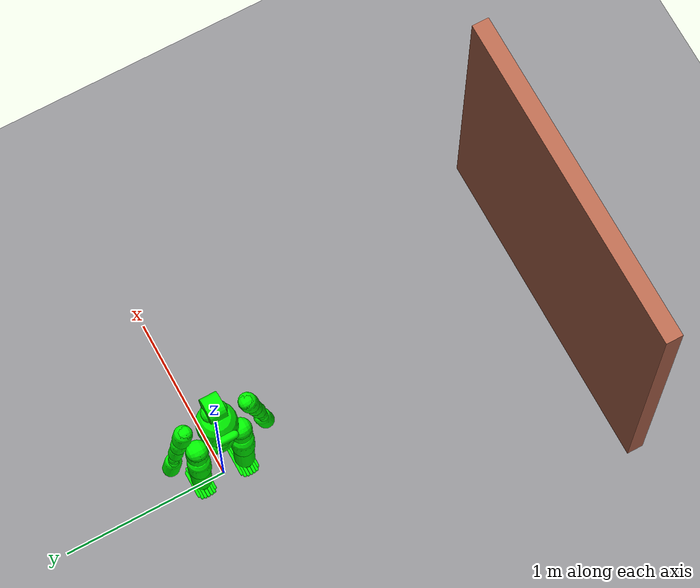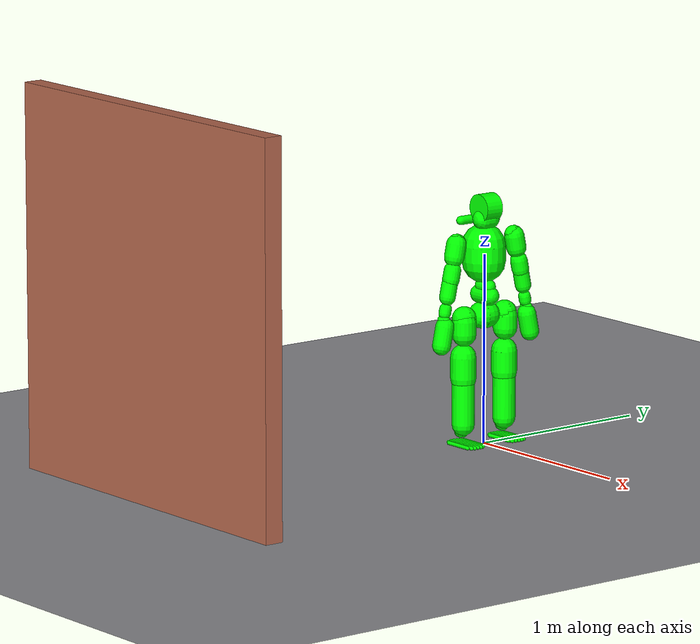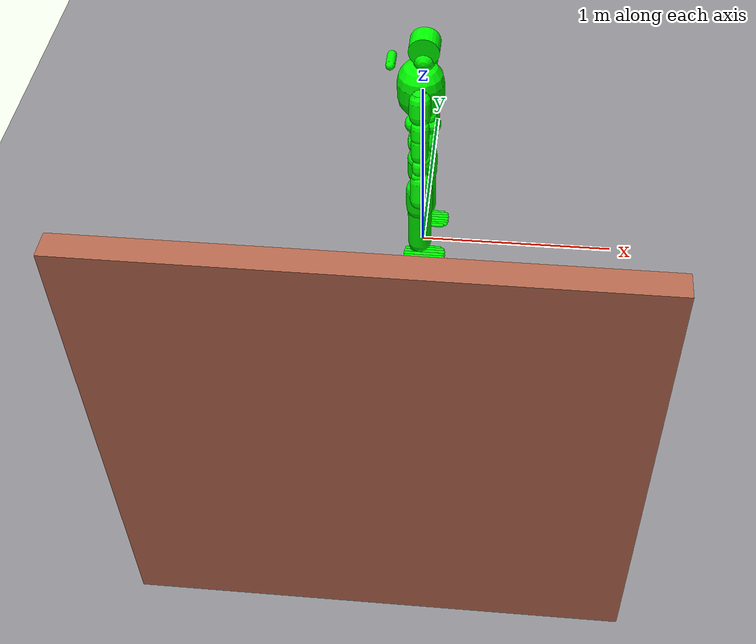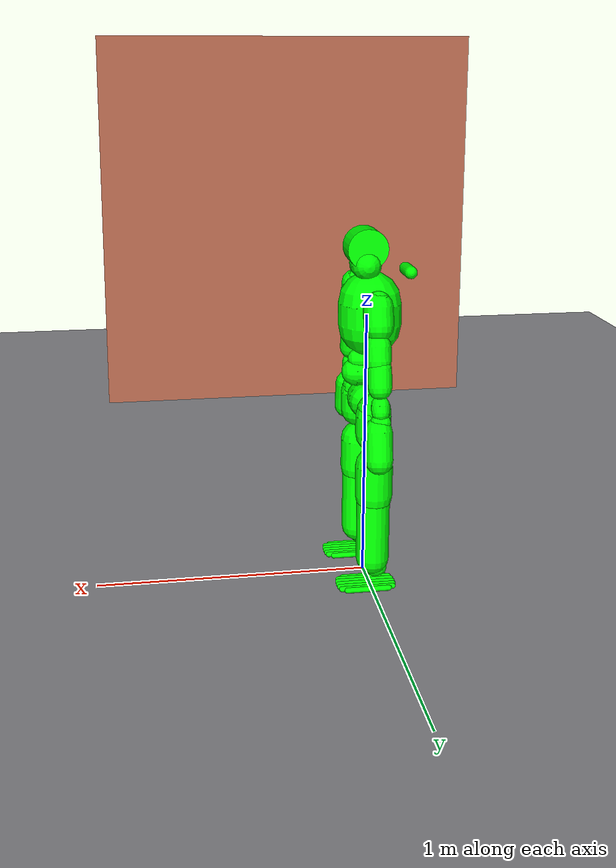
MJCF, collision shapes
<mujoco model="x2 simple collision flat scene with wall">
  <include file="x2_simple_collision.xml"/>

  <statistic center="0 0 0.75" extent="1.2"/>

  <visual>
    <headlight diffuse="0.6 0.6 0.6" ambient="0.1 0.1 0.1" specular="0.9 0.9 0.9"/>
    <map fogstart="100.0" fogend="300.0"/>
    <rgba haze="0.75 0.75 0.77 1"/>
    <global azimuth="140" elevation="-20"/>
  </visual>

  <asset>
    <texture type="skybox" builtin="gradient" rgb1="0.55 0.55 0.57" rgb2="0.55 0.55 0.57" width="512" height="3072"/>
    <texture type="2d" name="groundplane" builtin="checker" rgb1="0.62 0.62 0.63" rgb2="0.49 0.49 0.51"
      width="300" height="300"/>
    <material name="groundplane" texture="groundplane" texuniform="true" texrepeat="1.25 1.25" reflectance="0.0"/>
    <material name="wall_material" rgba="0.7 0.4 0.3 1"/>
  </asset>

  <worldbody>
    <geom name="floor" size="0 0 0.05" type="plane" material="groundplane" friction="1.0 0.005 0.0001"/>
    <body name="wall" pos="0 -2.135 1.0" euler="0.0 0.0 1.5708">
      <geom
        name="wall_collision"
        type="box"
        size="0.05 1.0 1.0"
        material="wall_material"
        contype="1"
        conaffinity="1"
        friction="1.0 0.1 0.1"
        rgba="0.7 0.4 0.3 1"
      />
    </body>
  </worldbody>

  <keyframe>
    <key name="home"
      qpos="
      0 0 0.68
      1 0 0 0
      -0.312 0.0 0.0 0.669 -0.363 0.0
      -0.312 0.0 0.0 0.669 -0.363 0.0
      0.0 0.0 0.0
      0.2 0.2 0.0 -0.3 0.0 0.0 0.0
      0.2 -0.2 0.0 -0.3 0.0 0.0 0.0
      "/>
  </keyframe>
</mujoco>

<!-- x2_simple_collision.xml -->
<mujoco model="x2_simple_collision">
  <compiler angle="radian" eulerseq="xyz" meshdir="./meshes" autolimits="true" />

  <option timestep="0.001" />

  <default>
      <default class="x2">
          <site rgba="1 0 0 1" size="0.01" group="5" />
          <joint damping="0.0" armature="0.03" frictionloss="0.3" />
          <default class="visual">
              <geom group="2" type="mesh" contype="0" conaffinity="0" density="0" />
          </default>
          <default class="collision">
              <geom group="3" type="mesh" contype="1" conaffinity="2" />
              <default class="foot">
                  <geom type="sphere" size="0.005" />
              </default>
          </default>
      </default>
  </default>
  <asset>
    <mesh name="pelvis" file="pelvis.STL" />
    <mesh name="imu_in_pelvis_link" file="imu_in_pelvis_link.STL" />
    <mesh name="left_hip_pitch_link" file="left_hip_pitch_link.STL" />
    <mesh name="left_hip_roll_link" file="left_hip_roll_link.STL" />
    <mesh name="col_left_hip_roll_link" file="left_hip_roll_link.STL" scale="1.0 0.9 1.0" />
    <mesh name="left_hip_yaw_link" file="left_hip_yaw_link.STL" />
    <mesh name="left_knee_link" file="left_knee_link.STL" />
    <mesh name="left_ankle_pitch_link" file="left_ankle_pitch_link.STL" />
    <mesh name="left_ankle_roll_link" file="left_ankle_roll_link.STL" />
    <mesh name="right_hip_pitch_link" file="right_hip_pitch_link.STL" />
    <mesh name="right_hip_roll_link" file="right_hip_roll_link.STL" />
    <mesh name="col_right_hip_roll_link" file="right_hip_roll_link.STL" scale="1.0 0.9 1.0" />
    <mesh name="right_hip_yaw_link" file="right_hip_yaw_link.STL" />
    <mesh name="right_knee_link" file="right_knee_link.STL" />
    <mesh name="right_ankle_pitch_link" file="right_ankle_pitch_link.STL" />
    <mesh name="right_ankle_roll_link" file="right_ankle_roll_link.STL" />
    <mesh name="waist_yaw_link" file="waist_yaw_link.STL" />
    <mesh name="waist_pitch_link" file="waist_pitch_link.STL" />
    <mesh name="torso_link" file="torso_plus_link.STL" />
    <mesh name="imu_in_torso_link" file="imu_in_torso_link.STL" />
    <mesh name="left_shoulder_pitch_link" file="left_shoulder_pitch_link.STL" />
    <mesh name="left_shoulder_roll_link" file="left_shoulder_roll_link.STL" />
    <mesh name="left_shoulder_yaw_link" file="left_shoulder_yaw_link.STL" />
    <mesh name="left_elbow_link" file="left_elbow_link.STL" />
    <mesh name="left_wrist_yaw_link" file="left_wrist_yaw_link.STL" />
    <mesh name="left_wrist_pitch_link" file="left_wrist_pitch_link.STL" />
    <mesh name="left_wrist_roll_link" file="left_wrist_roll_link.STL" />
    <mesh name="right_shoulder_pitch_link" file="right_shoulder_pitch_link.STL" />
    <mesh name="right_shoulder_roll_link" file="right_shoulder_roll_link.STL" />
    <mesh name="right_shoulder_yaw_link" file="right_shoulder_yaw_link.STL" />
    <mesh name="right_elbow_link" file="right_elbow_link.STL" />
    <mesh name="right_wrist_yaw_link" file="right_wrist_yaw_link.STL" />
    <mesh name="right_wrist_pitch_link" file="right_wrist_pitch_link.STL" />
    <mesh name="right_wrist_roll_link" file="right_wrist_roll_link.STL" />
    <mesh name="head_yaw_link" file="head_yaw_link.STL" />
    <mesh name="head_pitch_link" file="head_pitch_link.STL" />
    <mesh name="imu_in_head_link" file="imu_in_head_link.STL" />

  </asset>

  <worldbody>
    <body name="pelvis" pos="0 0 0.68" euler="0 0 0" childclass="x2">
      <freejoint name="floating_base_joint" />
      <geom class="visual" type="mesh" contype="0" conaffinity="0" group="1" density="0" rgba="0.298039 0.298039 0.298039 1" mesh="pelvis" />
      <geom class="collision" type="capsule" size="0.0702502" fromto="-0.0054424 -0.0156308 0.00130353 -0.0054424 0.0156308 0.00130353" rgba="0 1 0 0.3" />
      <geom class="visual" pos="0.0239465 -0.000228682 0.04171" quat="1 0 0 0" type="mesh" contype="0" conaffinity="0" group="1" density="0" mesh="imu_in_pelvis_link" />
      <site name="imu_0" pos="0.0239465 -0.000228682 0.04171" group="3" />
      <body name="left_hip_pitch_link" pos="0 0.07135 0">
        <inertial pos="0.00791 0.064136 0.000116" quat="0.70601 0.705897 0.0403038 0.0404307" mass="1.39968" diaginertia="0.00807979 0.007409 0.00155421" />
        <joint name="left_hip_pitch_joint" pos="0 0 0" axis="0 1 0" range="-2.704 2.556" actuatorfrcrange="-120 120" />
        <geom class="visual" type="mesh" contype="0" conaffinity="0" group="1" density="0" rgba="0.298039 0.298039 0.298039 1" mesh="left_hip_pitch_link" />
        <geom class="collision" type="capsule" size="0.0618209" fromto="-0.002075 0.0618209 0 -0.002075 0.0656842 0" rgba="0 1 0 0.3" group="3" />
        <body name="left_hip_roll_link" pos="-0.000575 0.0657 0">
          <inertial pos="4.7e-05 0.000231 -0.093505" quat="0.703892 0.00104942 0.00203424 0.710303" mass="1.5848" diaginertia="0.0181021 0.0176713 0.00251468" />
          <joint name="left_hip_roll_joint" pos="0 0 0" axis="1 0 0" range="-0.235 2.906" actuatorfrcrange="-120 120" />
          <geom class="visual" type="mesh" contype="0" conaffinity="0" group="1" density="0" rgba="1 1 1 1" mesh="left_hip_roll_link" />
          <geom class="collision" type="capsule" size="0.0640003" fromto="0.0005747 2.03345e-06 -0.0834933 0.0005747 2.03345e-06 -0.0149939" rgba="0 1 0 0.3" />
          <body name="left_hip_yaw_link" pos="0.000575 0 -0.13685">
            <inertial pos="-0.002375 0.003914 -0.144276" quat="0.647266 -0.0202222 0.00175224 0.761994" mass="2.01055" diaginertia="0.0526993 0.0519961 0.0023845" />
            <joint name="left_hip_yaw_joint" pos="0 0 0" axis="0 0 1" range="-1.684 3.43" actuatorfrcrange="-120 120" />
            <geom class="visual" type="mesh" contype="0" conaffinity="0" group="1" density="0" rgba="1 1 1 1" mesh="left_hip_yaw_link" />
            <geom class="collision" type="capsule" size="0.0676597" fromto="-0.00565975 0 -0.180803 -0.00565975 0 -0.068803" rgba="0 1 0 0.3" />
            <body name="left_knee_link" pos="-0.00766 0.000225 -0.1831">
              <inertial pos="-0.002655 0.003681 -0.122697" quat="0.437302 -0.00633388 0.00636434 0.89927" mass="1.56821" diaginertia="0.031041 0.0309424 0.00193262" />
              <joint name="left_knee_joint" pos="0 0 0" axis="0 1 0" range="0 2.4073" actuatorfrcrange="-120 120" />
              <geom class="visual" type="mesh" contype="0" conaffinity="0" group="1" density="0" rgba="1 1 1 1" mesh="left_knee_link" />
              <geom class="collision" type="capsule" size="0.0601612" fromto="0.0027895 -0.000225056 -0.242764 0.0027895 -0.000225056 -0.0082765" rgba="0 1 0 0.3" />
              <body name="left_ankle_pitch_link" pos="-0.01 -0.000124911 -0.282">
                <inertial pos="0.011691 -0.000181 0.003548" quat="0.72346 -0.0457688 0.0674454 0.685537" mass="0.747802" diaginertia="0.00117429 0.000984841 0.000709871" />
                <joint name="left_ankle_pitch_joint" pos="0 0 0" axis="0 1 0" range="-0.803 0.453" actuatorfrcrange="-36 36" />
                <geom class="visual" type="mesh" contype="0" conaffinity="0" group="1" density="0" rgba="0.298039 0.298039 0.298039 1" mesh="left_ankle_pitch_link" />
                <geom class="collision" type="capsule" size="0.0343" fromto="-0.0068 0 9.51812e-07 0.0045 0 9.51812e-07" rgba="0 1 0 0.3" />
                <body name="left_ankle_roll_link" pos="-0.00175 0 0">
                  <inertial pos="0.035428 2.5e-05 -0.049572" quat="0.614657 0.350346 0.350824 0.613496" mass="1.01617" diaginertia="0.007937 0.0068711 0.0025949" />
                  <joint name="left_ankle_roll_joint" pos="0 0 0" axis="1 0 0" range="-0.262 0.262" actuatorfrcrange="-24 24" />
                  <geom class="visual" type="mesh" contype="0" conaffinity="0" group="1" density="0" rgba="1 0.5 0 1" mesh="left_ankle_roll_link" />
                  <geom class="collision" type="capsule" group="3" size="0.01" fromto="-0.040 -0.05 -0.063 0.115 -0.05 -0.063" rgba="0 1 0 0.3"/>
                  <geom class="collision" type="capsule" group="3" size="0.01" fromto="-0.057 -0.0375 -0.063 0.133 -0.0375 -0.063" rgba="0 1 0 0.3"/>
                  <geom class="collision" type="capsule" group="3" size="0.01" fromto="-0.061 -0.02 -0.063 0.137 -0.02 -0.063" rgba="0 1 0 0.3"/>
                  <geom class="collision" type="capsule" group="3" size="0.01" fromto="-0.062 0 -0.063 0.138 0 -0.063" rgba="0 1 0 0.3"/>
                  <geom class="collision" type="capsule" group="3" size="0.01" fromto="-0.061 0.02 -0.063 0.137 0.02 -0.063" rgba="0 1 0 0.3"/>
                  <geom class="collision" type="capsule" group="3" size="0.01" fromto="-0.057 0.0375 -0.063 0.133 0.0375 -0.063" rgba="0 1 0 0.3"/>
                  <geom class="collision" type="capsule" group="3" size="0.01" fromto="-0.040 0.05 -0.063 0.115 0.05 -0.063" rgba="0 1 0 0.3"/>
                </body>
              </body>
            </body>
          </body>
        </body>
      </body>
      <body name="right_hip_pitch_link" pos="0 -0.07135 0">
        <inertial pos="0.007909 -0.064114 0.000131" quat="0.705894 0.706007 -0.0404833 -0.0403565" mass="1.40023" diaginertia="0.00808102 0.007409 0.00155498" />
        <joint name="right_hip_pitch_joint" pos="0 0 0" axis="0 1 0" range="-2.704 2.556" actuatorfrcrange="-120 120" />
        <geom class="visual" type="mesh" contype="0" conaffinity="0" group="1" density="0" rgba="0.298039 0.298039 0.298039 1" mesh="right_hip_pitch_link" />
        <geom class="collision" type="capsule" size="0.0618209" fromto="-0.00246997 -0.0656842 0 -0.00246997 -0.0618209 0" rgba="0 1 0 0.3" />
        <body name="right_hip_roll_link" pos="0 -0.0657 0">
          <inertial pos="-0.000586 -0.000228 -0.093568" quat="0.710476 -8.90189e-06 -0.00101098 0.703721" mass="1.58508" diaginertia="0.0181161 0.017694 0.00251594" />
          <joint name="right_hip_roll_joint" pos="0 0 0" axis="1 0 0" range="-2.906 0.235" actuatorfrcrange="-120 120" />
          <geom class="visual" type="mesh" contype="0" conaffinity="0" group="1" density="0" rgba="1 1 1 1" mesh="right_hip_roll_link" />
          <geom class="collision" type="capsule" size="0.0640003" fromto="0 -1.93957e-06 -0.0834934 0 -1.93957e-06 -0.0149938" rgba="0 1 0 0.3" />
          <body name="right_hip_yaw_link" pos="0 0 -0.13685">
            <inertial pos="-0.002444 -0.003935 -0.144335" quat="0.762367 0.00171388 -0.0204012 0.646821" mass="2.00262" diaginertia="0.0525579 0.0518558 0.0023773" />
            <joint name="right_hip_yaw_joint" pos="0 0 0" axis="0 0 1" range="-3.43 1.684" actuatorfrcrange="-120 120" />
            <geom class="visual" type="mesh" contype="0" conaffinity="0" group="1" density="0" rgba="1 1 1 1" mesh="right_hip_yaw_link" />
            <geom class="collision" type="capsule" size="0.0676597" fromto="-0.00565975 0 -0.180803 -0.00565975 0 -0.068803" rgba="0 1 0 0.3" />
            <body name="right_knee_link" pos="-0.00766 -0.000225 -0.1831">
              <inertial pos="-0.002699 -0.003794 -0.122288" quat="0.90334 0.0065752 -0.00663139 0.428824" mass="1.56588" diaginertia="0.0308703 0.0307718 0.00192491" />
              <joint name="right_knee_joint" pos="0 0 0" axis="0 1 0" range="0 2.4073" actuatorfrcrange="-120 120" />
              <geom class="visual" type="mesh" contype="0" conaffinity="0" group="1" density="0" rgba="1 1 1 1" mesh="right_knee_link" />
              <geom class="collision" type="capsule" size="0.0601612" fromto="0.0027895 0.000225246 -0.242764 0.0027895 0.000225246 -0.0082765" rgba="0 1 0 0.3" />
              <body name="right_ankle_pitch_link" pos="-0.01 0.000124911 -0.282">
                <inertial pos="0.011665 0.000937 0.00394" quat="0.7183 0.0624712 -0.034146 0.692081" mass="0.749566" diaginertia="0.00122381 0.00103716 0.000713034" />
                <joint name="right_ankle_pitch_joint" pos="0 0 0" axis="0 1 0" range="-0.803 0.453" actuatorfrcrange="-36 36" />
                <geom class="visual" type="mesh" contype="0" conaffinity="0" group="1" density="0" rgba="0.298039 0.298039 0.298039 1" mesh="right_ankle_pitch_link" />
                <geom class="collision" type="capsule" size="0.0343" fromto="-0.0068 0 9.51812e-07 0.0045 0 9.51812e-07" rgba="0 1 0 0.3" />
                <body name="right_ankle_roll_link" pos="-0.00175 0 0">
                  <inertial pos="0.035428 2.5e-05 -0.049572" quat="0.614657 0.350346 0.350824 0.613496" mass="1.01617" diaginertia="0.007937 0.0068711 0.0025949" />
                  <joint name="right_ankle_roll_joint" pos="0 0 0" axis="1 0 0" range="-0.2625 0.2625" actuatorfrcrange="-24 24" />
                  <geom class="visual" type="mesh" contype="0" conaffinity="0" group="1" density="0" rgba="1 0.5 0 1" mesh="right_ankle_roll_link" />
                  <geom class="collision" type="capsule" group="3" size="0.01" fromto="-0.040 -0.05 -0.063 0.115 -0.05 -0.063" rgba="0 1 0 0.3"/>
                  <geom class="collision" type="capsule" group="3" size="0.01" fromto="-0.057 -0.0375 -0.063 0.133 -0.0375 -0.063" rgba="0 1 0 0.3"/>
                  <geom class="collision" type="capsule" group="3" size="0.01" fromto="-0.061 -0.02 -0.063 0.137 -0.02 -0.063" rgba="0 1 0 0.3"/>
                  <geom class="collision" type="capsule" group="3" size="0.01" fromto="-0.062 0 -0.063 0.138 0 -0.063" rgba="0 1 0 0.3"/>
                  <geom class="collision" type="capsule" group="3" size="0.01" fromto="-0.061 0.02 -0.063 0.137 0.02 -0.063" rgba="0 1 0 0.3"/>
                  <geom class="collision" type="capsule" group="3" size="0.01" fromto="-0.057 0.0375 -0.063 0.133 0.0375 -0.063" rgba="0 1 0 0.3"/>
                  <geom class="collision" type="capsule" group="3" size="0.01" fromto="-0.040 0.05 -0.063 0.115 0.05 -0.063" rgba="0 1 0 0.3"/>
              </body>
            </body>
          </body>
        </body>
      </body>
      </body>
      <body name="waist_yaw_link" pos="0 0 0.06706">
        <inertial pos="-0.001359 4.7e-05 0.041703" quat="0.99876 0.000921559 0.0477625 0.0140034" mass="1.66854" diaginertia="0.00503206 0.00499998 0.00283196" />
        <joint name="waist_yaw_joint" pos="0 0 0" axis="0 0 1" range="-3.43 2.382" actuatorfrcrange="-120 120" />
        <geom class="visual" type="mesh" contype="0" conaffinity="0" group="1" density="0" rgba="0.298039 0.298039 0.298039 1" mesh="waist_yaw_link" />
        <geom class="collision" type="capsule" size="0.050" fromto="-0.040 0 0.040 0.040 0 0.040" rgba="0 1 0 0.3" />

        <body name="waist_pitch_link" pos="0 0 0.0880106">
          <inertial pos="0.008967 -1e-06 0" quat="0.5 0.5 -0.5 0.5" mass="0.392413" diaginertia="0.00023 0.000133 0.000133" />
          <joint name="waist_pitch_joint" pos="0 0 0" axis="0 1 0" range="-0.314 0.314" actuatorfrcrange="-48 48" />
          <geom class="visual" type="mesh" contype="0" conaffinity="0" group="1" density="0" rgba="0.298039 0.298039 0.298039 1" mesh="waist_pitch_link" />
          <geom class="collision" type="capsule" size="0.038" fromto="-0.020 0 0 0.030 0 0" rgba="0 1 0 0.3" />

          <body name="torso_link">
          <inertial pos="-0.000188 0.000605 0.191827" quat="0.999959 0.00110321 0.0081892 0.00362262" mass="10.1441" diaginertia="0.479863 0.455999 0.0666413" />
            <joint name="waist_roll_joint" pos="0 0 0" axis="1 0 0" range="-0.488 0.488" actuatorfrcrange="-48 48" />
            <geom class="visual" type="mesh" contype="0" conaffinity="0" group="1" density="0" rgba="1 1 1 1" mesh="torso_link" />
            <geom class="collision" type="capsule" size="0.115" fromto="-0.010 0 0.132 -0.010 0 0.212" rgba="0 1 0 0.3" />
            <geom class="collision" type="capsule" size="0.023" fromto="-0.15 -0.04 0.325 -0.15 0.04 0.325" rgba="0 1 0 0.3" />
            <site name="imu_1" pos="-0.0248787 0.00198528 0.105938" group="3" />
            <geom class="visual" pos="-0.0248787 0.00198528 0.105938" quat="1 0 0 0" type="mesh" contype="0" conaffinity="0" group="1" density="0" rgba="0.647059 0.619608 0.588235 1" mesh="imu_in_torso_link" />
            <body name="left_shoulder_pitch_link" pos="0.00329907 0.143032 0.241648" quat="0.994522 0.104528 0 0">
              <inertial pos="0.003007 0.050014 6.2e-05" quat="0.707145 0.706403 0.027325 0.0139105" mass="0.885896" diaginertia="0.00303104 0.00292896 0.000676999" />
              <joint name="left_shoulder_pitch_joint" pos="0 0 0" axis="0 1 0" range="-3.08 2.04" actuatorfrcrange="-36 36" />
              <geom class="visual" type="mesh" contype="0" conaffinity="0" group="1" density="0" rgba="0.298039 0.298039 0.298039 1" mesh="left_shoulder_pitch_link" />
              <geom class="collision" type="capsule" size="0.0451779" fromto="-0.00162681 0.045178 1.19526e-05 -0.00162681 0.0494221 1.19526e-05" rgba="0 1 0 0.3" />
              <body name="left_shoulder_roll_link" pos="-0.000499991 0.0495 0">
                <inertial pos="0.000621 -0.000183 -0.078842" quat="0.706401 0.00587444 0.00386922 0.707777" mass="0.706556" diaginertia="0.00549904 0.00540092 0.000539037" />
                <joint name="left_shoulder_roll_joint" pos="0 0 0" axis="1 0 0" range="-0.061 2.993" actuatorfrcrange="-36 36" />
                <geom class="visual" type="mesh" contype="0" conaffinity="0" group="1" density="0" rgba="1 1 1 1" mesh="left_shoulder_roll_link" />
                <geom class="collision" type="capsule" size="0.0524444" fromto="0.0004453 -6.74278e-07 -0.0771634 0.0004453 -6.74278e-07 -0.0097262" rgba="0 1 0 0.3" />
                <body name="left_shoulder_yaw_link" pos="0.00122424 0 -0.121195" quat="0.999996 0 -0.00298782 0">
                  <inertial pos="0.010005 0.000179 -0.069477" quat="0.996444 0.00144278 0.0782236 0.0312643" mass="0.704662" diaginertia="0.00438693 0.00436694 0.00044713" />
                  <joint name="left_shoulder_yaw_joint" pos="0 0 0" axis="0 0 1" range="-2.556 2.556" actuatorfrcrange="-24 24" />
                  <geom class="visual" type="mesh" contype="0" conaffinity="0" group="1" density="0" rgba="1 1 1 1" mesh="left_shoulder_yaw_link" />
                  <geom class="collision" type="capsule" size="0.0451555" fromto="0.00310745 -1.09896e-06 -0.0752051 0.00310745 -1.09896e-06 -0.0251553" rgba="0 1 0 0.3" />
                  <body name="left_elbow_link" pos="0.014 0.000199986 -0.08295" quat="0.999996 0 0.00298782 0">
                    <inertial pos="-0.013174 0.003788 -0.080203" quat="0.970867 0.0083727 -0.0764035 -0.226955" mass="0.688008" diaginertia="0.0054008 0.00531735 0.000446844" />
                    <joint name="left_elbow_joint" pos="0 0 0" axis="0 1 0" range="-2.3556 0" actuatorfrcrange="-24 24" />
                    <geom class="visual" type="mesh" contype="0" conaffinity="0" group="1" density="0" rgba="1 1 1 1" mesh="left_elbow_link" />
                    <geom class="collision" type="capsule" size="0.0423332" fromto="-0.0130287 0.00213197 -0.0832989 -0.0130287 0.00213197 -0.0148127" rgba="0 1 0 0.3" />
                    <body name="left_wrist_yaw_link" pos="-0.0132797 -9.75488e-05 -0.120576">
                      <inertial pos="7.6e-05 0.007263 -0.030679" quat="0.992384 -0.122507 -0.00213896 -0.0126728" mass="0.360708" diaginertia="0.000612057 0.000527003 0.00018794" />
                      <joint name="left_wrist_yaw_joint" pos="0 0 0" axis="0 0 1" range="-2.556 2.556" actuatorfrcrange="-24 24" />
                      <geom class="visual" type="mesh" contype="0" conaffinity="0" group="1" density="0" rgba="1 1 1 1" mesh="left_wrist_yaw_link" />
                      <geom class="collision" type="capsule" size="0.032" fromto="0 0 -0.047 0 0 -0.023" rgba="0 1 0 0.3" />

                      <body name="left_wrist_pitch_link" pos="0.000490001 0 -0.0819985" quat="0.999996 0 -0.00298783 0">
                        <inertial pos="0.011479 0.002282 0.001703" quat="0.258763 0.693211 0.202262 0.641553" mass="0.292062" diaginertia="0.000178433 0.000138482 9.10855e-05" />
                        <joint name="left_wrist_pitch_joint" pos="0 0 0" axis="0 1 0" range="-0.558 0.558" actuatorfrcrange="-4.8 4.8" />
                        <geom class="visual" type="mesh" contype="0" conaffinity="0" group="1" density="0" rgba="0.3 0.3 0.3 1" mesh="left_wrist_pitch_link" />
                        <geom class="collision" type="capsule" size="0.029" fromto="-0.0065 -0.0015 -0.00124581 0.006 -0.0015 -0.00124581" rgba="0 1 0 0.3" />
                        <body name="left_wrist_roll_link">
                          <inertial pos="0.002935 -0.001499 -0.083026" quat="0.606338 0.022665 0.0055862 0.794865" mass="0.30304" diaginertia="0.00278114 0.00266331 0.000205545" />
                          <joint name="left_wrist_roll_joint" pos="0 0 0" axis="1 0 0" range="-1.571 0.724" actuatorfrcrange="-4.8 4.8" />
                          <geom class="visual" type="mesh" contype="0" conaffinity="0" group="1" density="0" rgba="0.898039 0.917647 0.929412 1" mesh="left_wrist_roll_link" />
                          <geom class="collision" type="capsule" size="0.0485872" fromto="0.0065872 -0.00936239 -0.133114 0.0065872 -0.00936239 -0.0320872" rgba="0 1 0 0.3" />
                        </body>
                      </body>
                    </body>
                  </body>
                </body>
              </body>
            </body>
            <body name="right_shoulder_pitch_link" pos="0.00330094 -0.143031 0.241648" quat="0.994522 -0.10453 0 0">
              <inertial pos="0.002721 -0.050304 3.4e-05" quat="0.706743 0.706967 -0.0144448 -0.0224265" mass="0.885544" diaginertia="0.00303743 0.00294899 0.00067458" />
              <joint name="right_shoulder_pitch_joint" pos="0 0 0" axis="0 1 0" range="-3.08 2.04" actuatorfrcrange="-36 36" />
              <geom class="visual" type="mesh" contype="0" conaffinity="0" group="1" density="0" rgba="0.298039 0.298039 0.298039 1" mesh="right_shoulder_pitch_link" />
              <geom class="collision" type="capsule" size="0.0450011" fromto="-0.00173747 -0.0495987 -1.27591e-06 -0.00173747 -0.0450011 -1.27591e-06" rgba="0 1 0 0.3" />
              <body name="right_shoulder_roll_link" pos="-0.0005 -0.0495 0" quat="1 0 7.70015e-05 0">
                <inertial pos="0.000598 0.000185 -0.079928" quat="0.707532 0.00175816 0.00375761 0.706669" mass="0.696963" diaginertia="0.00548904 0.0054003 0.000529664" />
                <joint name="right_shoulder_roll_joint" pos="0 0 0" axis="1 0 0" range="-2.993 0.061" actuatorfrcrange="-36 36" />
                <geom class="visual" type="mesh" contype="0" conaffinity="0" group="1" density="0" rgba="1 1 1 1" mesh="right_shoulder_roll_link" />
                <geom class="collision" type="capsule" size="0.0524444" fromto="0.0004433 0 -0.0771056 0.0004433 0 -0.0097244" rgba="0 1 0 0.3" />
                <body name="right_shoulder_yaw_link" pos="0.0005 0 -0.1212">
                  <inertial pos="0.010082 -0.000178 -0.069484" quat="0.996531 -0.00117604 0.0784297 -0.0277917" mass="0.704661" diaginertia="0.00438849 0.00436595 0.000445562" />
                  <joint name="right_shoulder_yaw_joint" pos="0 0 0" axis="0 0 1" range="-2.556 2.556" actuatorfrcrange="-24 24" />
                  <geom class="visual" type="mesh" contype="0" conaffinity="0" group="1" density="0" rgba="1 1 1 1" mesh="right_shoulder_yaw_link" />
                  <geom class="collision" type="capsule" size="0.044822" fromto="0.00344085 1.28523e-06 -0.0734741 0.00344085 1.28523e-06 -0.0245757" rgba="0 1 0 0.3" />
                  <body name="right_elbow_link" pos="0.014 -0.0002 -0.08295">
                    <inertial pos="-0.013517 -0.003463 -0.080438" quat="0.973224 -0.00938144 -0.0782816 0.215913" mass="0.687932" diaginertia="0.00542019 0.00534355 0.000444255" />
                    <joint name="right_elbow_joint" pos="0 0 0" axis="0 1 0" range="-2.3556 0" actuatorfrcrange="-24 24" />
                    <geom class="visual" type="mesh" contype="0" conaffinity="0" group="1" density="0" rgba="1 1 1 1" mesh="right_elbow_link" />
                    <geom class="collision" type="capsule" size="0.0423334" fromto="-0.0117707 -0.00213153 -0.0831608 -0.0117707 -0.00213153 -0.0147232" rgba="0 1 0 0.3" />
                    <body name="right_wrist_yaw_link" pos="-0.014 9.75261e-05 -0.120694" quat="1 0 0 1.63671e-05">
                      <inertial pos="0.000153 -0.006979 -0.032069" quat="0.994972 0.0996496 -0.000602255 0.0100452" mass="0.372787" diaginertia="0.00069604 0.000598539 0.000202421" />
                      <joint name="right_wrist_yaw_joint" pos="0 0 0" axis="0 0 1" range="-2.556 2.556" actuatorfrcrange="-24 24" />
                      <geom class="visual" type="mesh" contype="0" conaffinity="0" group="1" density="0" rgba="1 1 1 1" mesh="right_wrist_yaw_link" />
                      <geom class="collision" type="capsule" size="0.032" fromto="0 0 -0.047 0 0 -0.023" rgba="0 1 0 0.3" />

                      <body name="right_wrist_pitch_link" pos="0 0 -0.0818" quat="1 0 0 -1.63671e-05">
                        <inertial pos="0.012092 -0.002544 0.001781" quat="-0.292763 0.682227 -0.235996 0.627027" mass="0.279175" diaginertia="0.000171965 0.00013308 8.19541e-05" />
                        <joint name="right_wrist_pitch_joint" pos="0 0 0" axis="0 1 0" range="-0.558 0.558" actuatorfrcrange="-4.8 4.8" />
                        <geom class="visual" type="mesh" contype="0" conaffinity="0" group="1" density="0" rgba="0.3 0.3 0.3 1" mesh="right_wrist_pitch_link" />
                        <geom class="collision" type="capsule" size="0.029" fromto="-0.00650001 0.0015 -0.00124581 0.006 0.0015 -0.00124581" rgba="0 1 0 0.3" />
                        <body name="right_wrist_roll_link">
                          <inertial pos="0.003056 0.00138 -0.082799" quat="0.794575 0.00682121 0.0232843 0.606681" mass="0.303847" diaginertia="0.002781 0.00266288 0.000206121" />
                          <joint name="right_wrist_roll_joint" pos="0 0 0" axis="1 0 0" range="-0.724 1.571" actuatorfrcrange="-4.8 4.8" />
                          <geom class="visual" type="mesh" contype="0" conaffinity="0" group="1" density="0" rgba="0.898039 0.917647 0.929412 1" mesh="right_wrist_roll_link" />
                          <geom class="collision" type="capsule" size="0.0487165" fromto="0.00671655 0.00921908 -0.133006 0.00671655 0.00921908 -0.0322166" rgba="0 1 0 0.3" />
                        </body>
                      </body>
                    </body>
                  </body>
                </body>
              </body>
            </body>
            <body name="head_yaw_link" pos="0.00834773 0 0.309397">
              <inertial pos="-0.003139 0.001399 0.051838" quat="0.999924 -0.00911422 0.00384341 0.00741605" mass="0.720047" diaginertia="0.0038613 0.00323157 0.00110213" />

              <geom class="visual" type="mesh" contype="0" conaffinity="0" group="1" density="0" rgba="0.866667 0.866667 0.890196 1" mesh="head_yaw_link" />
              <geom class="collision" type="capsule" size="0.055" fromto="0 -0.020 0.045 0 0.020 0.045" rgba="0 1 0 0.3" />

              <body name="head_pitch_link" pos="0 0 0.0889">
                <inertial pos="0.003033 -6e-05 0.004395" quat="0.695573 -0.162421 -0.145198 0.684628" mass="0.999287" diaginertia="0.0035988 0.00298179 0.00259841" />

                <geom class="collision" size="0.074 0.05" pos="0 0 0.015" quat="0.499898 0.5 0.5 -0.500102" type="cylinder" rgba="0 1 0 0.3" />
                <geom class="visual" type="mesh" contype="0" conaffinity="0" group="1" density="0" rgba="0.2 0.2 0.2 1" mesh="head_pitch_link" />

                <site name="imu_2" pos="0.0259999 -8.25389e-05 0.0176" group="3" />
                <geom class="visual" pos="0.0259999 -8.25389e-05 0.0176" quat="1 0 0 0" type="mesh" contype="0" conaffinity="0" group="1" density="0" rgba="0.647059 0.619608 0.588235 1" mesh="imu_in_head_link" />

              </body>
            </body>
          </body>
        </body>
      </body>
    </body>
  </worldbody>
  <actuator>
    <position class="x2" kp="120" kv="5" forcerange="-120 120" name="left_hip_pitch_joint" joint="left_hip_pitch_joint" />
    <position class="x2" kp="100" kv="4" forcerange="-120 120" name="left_hip_roll_joint" joint="left_hip_roll_joint" />
    <position class="x2" kp="100" kv="4" forcerange="-120 120" name="left_hip_yaw_joint" joint="left_hip_yaw_joint" />
    <position class="x2" kp="150" kv="5" forcerange="-120 120" name="left_knee_joint" joint="left_knee_joint" />
    <position class="x2" kp="40" kv="2" forcerange="-36 36" name="left_ankle_pitch_joint" joint="left_ankle_pitch_joint" />
    <position class="x2" kp="40" kv="2" forcerange="-24 24" name="left_ankle_roll_joint" joint="left_ankle_roll_joint" />

    <position class="x2" kp="120" kv="5" forcerange="-120 120" name="right_hip_pitch_joint" joint="right_hip_pitch_joint" />
    <position class="x2" kp="100" kv="4" forcerange="-120 120" name="right_hip_roll_joint" joint="right_hip_roll_joint" />
    <position class="x2" kp="100" kv="4" forcerange="-120 120" name="right_hip_yaw_joint" joint="right_hip_yaw_joint" />
    <position class="x2" kp="150" kv="5" forcerange="-120 120" name="right_knee_joint" joint="right_knee_joint" />
    <position class="x2" kp="40" kv="2" forcerange="-36 36" name="right_ankle_pitch_joint" joint="right_ankle_pitch_joint" />
    <position class="x2" kp="40" kv="2" forcerange="-24 24" name="right_ankle_roll_joint" joint="right_ankle_roll_joint" />

    <position class="x2" kp="40.1792" kv="2.5579" forcerange="-120 120" name="waist_yaw_joint" joint="waist_yaw_joint" />
    <position class="x2" kp="200" kv="2" forcerange="-48 48" name="waist_pitch_joint" joint="waist_pitch_joint" />
    <position class="x2" kp="200" kv="2" forcerange="-48 48" name="waist_roll_joint" joint="waist_roll_joint" />

    <position class="x2" kp="50" kv="3" forcerange="-36 36" name="left_shoulder_pitch_joint" joint="left_shoulder_pitch_joint" />
    <position class="x2" kp="50" kv="3" forcerange="-36 36" name="left_shoulder_roll_joint" joint="left_shoulder_roll_joint" />
    <position class="x2" kp="50" kv="3" forcerange="-24 24" name="left_shoulder_yaw_joint" joint="left_shoulder_yaw_joint" />
    <position class="x2" kp="50" kv="3" forcerange="-24 24" name="left_elbow_joint" joint="left_elbow_joint" />
    <position class="x2" kp="20" kv="2" forcerange="-24 24" name="left_wrist_yaw_joint" joint="left_wrist_yaw_joint" />
    <position class="x2" kp="20" kv="2" forcerange="-4.8 4.8" name="left_wrist_pitch_joint" joint="left_wrist_pitch_joint" />
    <position class="x2" kp="20" kv="2" forcerange="-4.8 4.8" name="left_wrist_roll_joint" joint="left_wrist_roll_joint" />

    <position class="x2" kp="50" kv="3" forcerange="-36 36" name="right_shoulder_pitch_joint" joint="right_shoulder_pitch_joint" />
    <position class="x2" kp="50" kv="3" forcerange="-36 36" name="right_shoulder_roll_joint" joint="right_shoulder_roll_joint" />
    <position class="x2" kp="50" kv="3" forcerange="-24 24" name="right_shoulder_yaw_joint" joint="right_shoulder_yaw_joint" />
    <position class="x2" kp="50" kv="3" forcerange="-24 24" name="right_elbow_joint" joint="right_elbow_joint" />
    <position class="x2" kp="20" kv="2" forcerange="-24 24" name="right_wrist_yaw_joint" joint="right_wrist_yaw_joint" />
    <position class="x2" kp="20" kv="2" forcerange="-4.8 4.8" name="right_wrist_pitch_joint" joint="right_wrist_pitch_joint" />
    <position class="x2" kp="20" kv="2" forcerange="-4.8 4.8" name="right_wrist_roll_joint" joint="right_wrist_roll_joint" />
  </actuator>
  <sensor>

    <framequat name="body-orientation" objtype="site" objname="imu_0" noise="0" />
    <gyro name="body-angular-velocity" site="imu_0" noise="0.001" />
    <framepos name="body-linear-pos" objtype="site" objname="imu_0" />
    <velocimeter name="body-linear-vel" site="imu_0" />
    <accelerometer name="body-linear-acceleration" site="imu_0" noise="0.001" />

    <jointpos name="jointpos_left_hip_pitch_joint" joint="left_hip_pitch_joint" noise="0" />
    <jointpos name="jointpos_left_hip_roll_joint" joint="left_hip_roll_joint" noise="0" />
    <jointpos name="jointpos_left_hip_yaw_joint" joint="left_hip_yaw_joint" noise="0" />
    <jointpos name="jointpos_left_knee_joint" joint="left_knee_joint" noise="0" />
    <jointpos name="jointpos_left_ankle_pitch_joint" joint="left_ankle_pitch_joint" noise="0" />
    <jointpos name="jointpos_left_ankle_roll_joint" joint="left_ankle_roll_joint" noise="0" />

    <jointpos name="jointpos_right_hip_pitch_joint" joint="right_hip_pitch_joint" noise="0" />
    <jointpos name="jointpos_right_hip_roll_joint" joint="right_hip_roll_joint" noise="0" />
    <jointpos name="jointpos_right_hip_yaw_joint" joint="right_hip_yaw_joint" noise="0" />
    <jointpos name="jointpos_right_knee_joint" joint="right_knee_joint" noise="0" />
    <jointpos name="jointpos_right_ankle_pitch_joint" joint="right_ankle_pitch_joint" noise="0" />
    <jointpos name="jointpos_right_ankle_roll_joint" joint="right_ankle_roll_joint" noise="0" />

    <jointpos name="jointpos_waist_yaw_joint" joint="waist_yaw_joint" noise="0" />
    <jointpos name="jointpos_waist_pitch_joint" joint="waist_pitch_joint" noise="0" />
    <jointpos name="jointpos_waist_roll_joint" joint="waist_roll_joint" noise="0" />

    <jointpos name="jointpos_left_shoulder_pitch_joint" joint="left_shoulder_pitch_joint" noise="0" />
    <jointpos name="jointpos_left_shoulder_roll_joint" joint="left_shoulder_roll_joint" noise="0" />
    <jointpos name="jointpos_left_shoulder_yaw_joint" joint="left_shoulder_yaw_joint" noise="0" />
    <jointpos name="jointpos_left_elbow_joint" joint="left_elbow_joint" noise="0" />

    <jointpos name="jointpos_right_shoulder_pitch_joint" joint="right_shoulder_pitch_joint" noise="0" />
    <jointpos name="jointpos_right_shoulder_roll_joint" joint="right_shoulder_roll_joint" noise="0" />
    <jointpos name="jointpos_right_shoulder_yaw_joint" joint="right_shoulder_yaw_joint" noise="0" />
    <jointpos name="jointpos_right_elbow_joint" joint="right_elbow_joint" noise="0" />

    <jointvel name="jointvel_left_hip_pitch_joint" joint="left_hip_pitch_joint" noise="0" />
    <jointvel name="jointvel_left_hip_roll_joint" joint="left_hip_roll_joint" noise="0" />
    <jointvel name="jointvel_left_hip_yaw_joint" joint="left_hip_yaw_joint" noise="0" />
    <jointvel name="jointvel_left_knee_joint" joint="left_knee_joint" noise="0" />
    <jointvel name="jointvel_left_ankle_pitch_joint" joint="left_ankle_pitch_joint" noise="0" />
    <jointvel name="jointvel_left_ankle_roll_joint" joint="left_ankle_roll_joint" noise="0" />

    <jointvel name="jointvel_right_hip_pitch_joint" joint="right_hip_pitch_joint" noise="0" />
    <jointvel name="jointvel_right_hip_roll_joint" joint="right_hip_roll_joint" noise="0" />
    <jointvel name="jointvel_right_hip_yaw_joint" joint="right_hip_yaw_joint" noise="0" />
    <jointvel name="jointvel_right_knee_joint" joint="right_knee_joint" noise="0" />
    <jointvel name="jointvel_right_ankle_pitch_joint" joint="right_ankle_pitch_joint" noise="0" />
    <jointvel name="jointvel_right_ankle_roll_joint" joint="right_ankle_roll_joint" noise="0" />

    <jointvel name="jointvel_waist_yaw_joint" joint="waist_yaw_joint" noise="0" />
    <jointvel name="jointvel_waist_pitch_joint" joint="waist_pitch_joint" noise="0" />
    <jointvel name="jointvel_waist_roll_joint" joint="waist_roll_joint" noise="0" />

    <jointvel name="jointvel_left_shoulder_pitch_joint" joint="left_shoulder_pitch_joint" noise="0" />
    <jointvel name="jointvel_left_shoulder_roll_joint" joint="left_shoulder_roll_joint" noise="0" />
    <jointvel name="jointvel_left_shoulder_yaw_joint" joint="left_shoulder_yaw_joint" noise="0" />
    <jointvel name="jointvel_left_elbow_joint" joint="left_elbow_joint" noise="0" />

    <jointvel name="jointvel_right_shoulder_pitch_joint" joint="right_shoulder_pitch_joint" noise="0" />
    <jointvel name="jointvel_right_shoulder_roll_joint" joint="right_shoulder_roll_joint" noise="0" />
    <jointvel name="jointvel_right_shoulder_yaw_joint" joint="right_shoulder_yaw_joint" noise="0" />
    <jointvel name="jointvel_right_elbow_joint" joint="right_elbow_joint" noise="0" />

  </sensor>
</mujoco>
